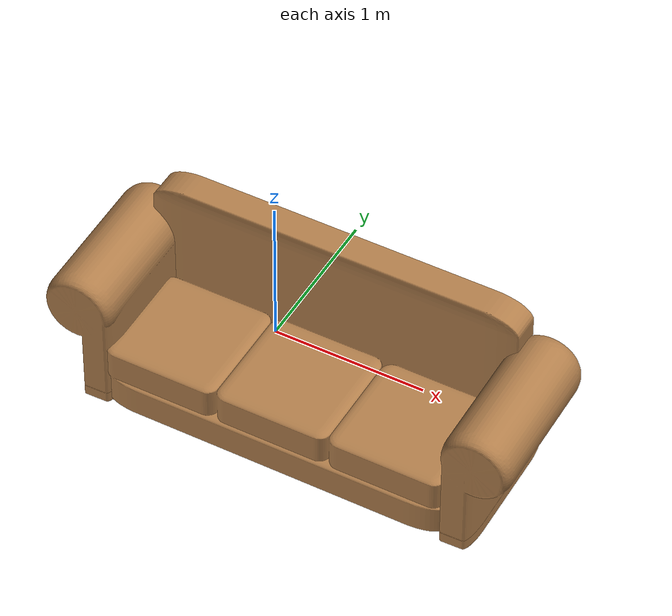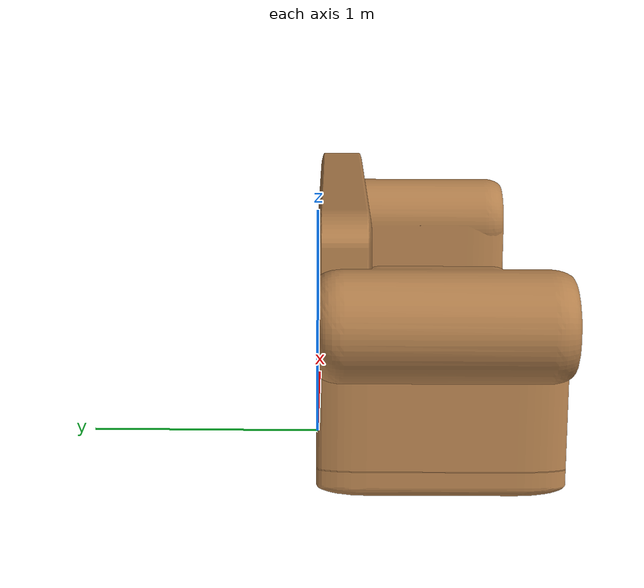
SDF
<?xml version='1.0'?>
<sdf version='1.6'>
  <model name='3d_sofa'>
    <link name='link'>
      <pose frame=''>0 0 0 0 -0 0</pose>
      <inertial>
        <mass>1</mass>
        <pose frame=''>0 0 0 0 -0 0</pose>
        <inertia>
          <ixx>1</ixx>
          <ixy>0</ixy>
          <ixz>0</ixz>
          <iyy>1</iyy>
          <iyz>0</iyz>
          <izz>1</izz>
        </inertia>
      </inertial>
      <self_collide>0</self_collide>
      <kinematic>0</kinematic>
      <gravity>1</gravity>
      <visual name='visual'>
        <geometry>
          <mesh>
            <uri>model://3d_sofa/meshes/Sofa.stl</uri>
            <scale>1 1 1</scale>
          </mesh>
        </geometry>
        <pose frame=''>0 0 0 0 -0 0</pose>
        <cast_shadows>1</cast_shadows>
        <transparency>0</transparency>
        <material>
          <script>
            <uri>file://media/materials/scripts/gazebo.material</uri>
            <name>Gazebo/Wood</name>
          </script>
        </material>
      </visual>
      <collision name='collision'>
        <laser_retro>0</laser_retro>
        <max_contacts>10</max_contacts>
        <pose frame=''>0.55 -0.5 0.21 0 -0 0</pose>
        <geometry>
          <box>
            <size>2.5 1 0.42</size>
          </box>
        </geometry>
        <surface>
          <friction>
            <ode>
              <mu>1</mu>
              <mu2>1</mu2>
              <fdir1>0 0 0</fdir1>
              <slip1>0</slip1>
              <slip2>0</slip2>
            </ode>
            <torsional>
              <coefficient>1</coefficient>
              <patch_radius>0</patch_radius>
              <surface_radius>0</surface_radius>
              <use_patch_radius>1</use_patch_radius>
              <ode>
                <slip>0</slip>
              </ode>
            </torsional>
          </friction>
          <bounce>
            <restitution_coefficient>0</restitution_coefficient>
            <threshold>1e+06</threshold>
          </bounce>
          <contact>
            <collide_without_contact>0</collide_without_contact>
            <collide_without_contact_bitmask>1</collide_without_contact_bitmask>
            <collide_bitmask>1</collide_bitmask>
            <ode>
              <soft_cfm>0</soft_cfm>
              <soft_erp>0.2</soft_erp>
              <kp>1e+13</kp>
              <kd>1</kd>
              <max_vel>0.01</max_vel>
              <min_depth>0</min_depth>
            </ode>
            <bullet>
              <split_impulse>1</split_impulse>
              <split_impulse_penetration_threshold>-0.01</split_impulse_penetration_threshold>
              <soft_cfm>0</soft_cfm>
              <soft_erp>0.2</soft_erp>
              <kp>1e+13</kp>
              <kd>1</kd>
            </bullet>
          </contact>
        </surface>
      </collision>
    </link>
    <static>1</static>
    <allow_auto_disable>1</allow_auto_disable>
  </model>
</sdf>
